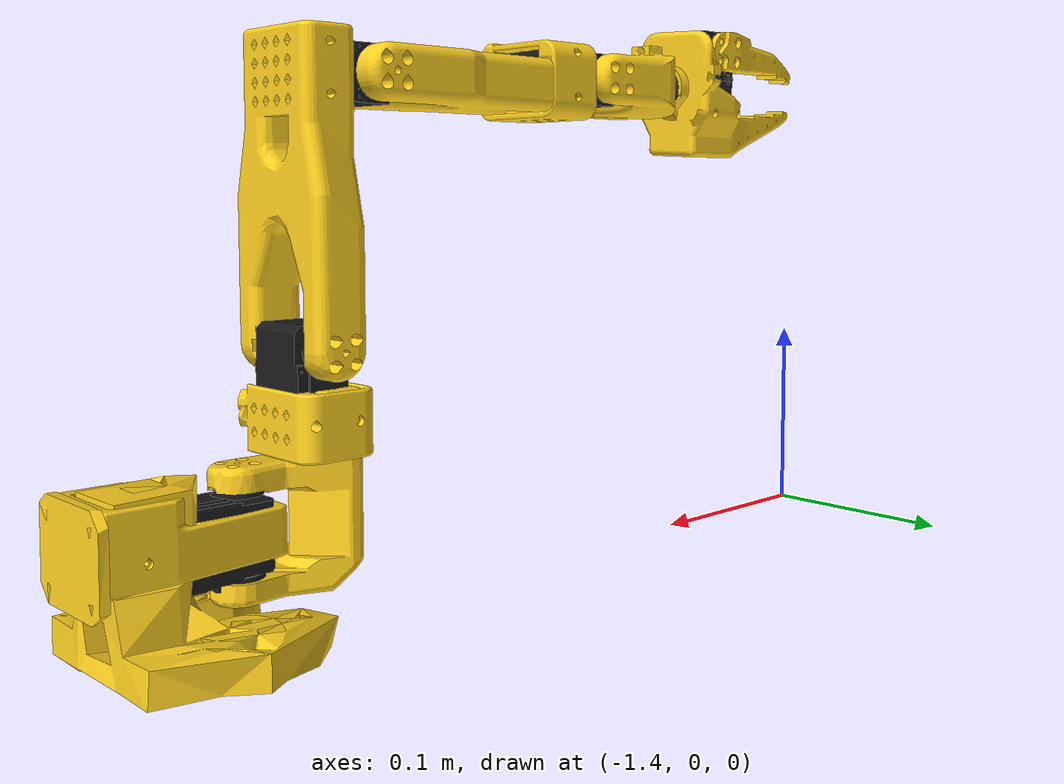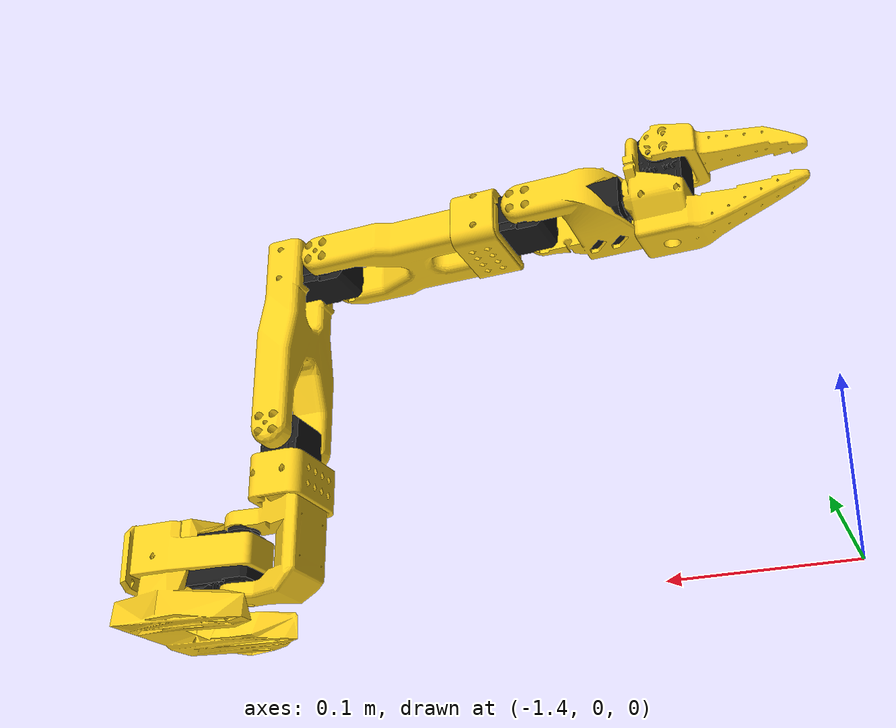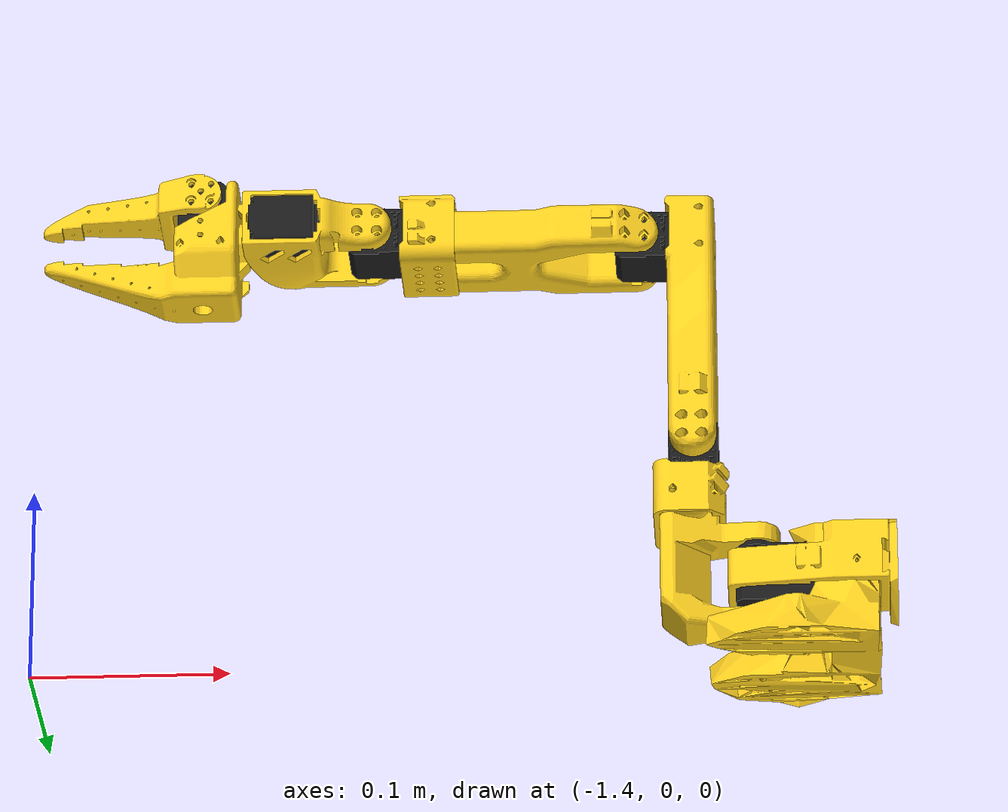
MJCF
<?xml version="1.0" ?>
<!-- Generated using onshape-to-robot -->
<!-- Onshape https://cad.onshape.com/documents/7715cc284bb430fe6dab4ffd/w/4fd0791b683777b02f8d975a/e/826c553ede3b7592eb9ca800 -->
<mujoco model="right_so101">
  <compiler angle="radian" meshdir="assets" autolimits="true"/>
  <default>
    <default class="right_so101">
      <joint damping="1" frictionloss="0.1" armature="0.005"/>
      <position kp="50"/>
      <default class="right_visual">
        <geom type="mesh" contype="0" conaffinity="0" group="2"/>
      </default>
      <default class="right_collision">
        <geom group="3"/>
      </default>
    </default>
  </default>
  <!-- Additional joints_properties.xml -->
  <default>
    <default class="right_sts3215">
      <geom contype="0" conaffinity="0"/>
      <joint damping="0.60" frictionloss="0.052" armature="0.028"/>
      <position kp="998.22" kv="2.731" forcerange="-2.94 2.94"/>
    </default>
    <default class="right_backlash">
      <!-- +/- 0.5° of backlash -->
      <joint damping="0.01" frictionloss="0" armature="0.01" limited="true" range="-0.008726646259971648 0.008726646259971648"/>
    </default>
  </default>
  <worldbody>
    <!-- Link base -->
    <body name="right_base" pos="-1.0 0 0" quat="0 0 0 1" childclass="right_so101">
      <inertial pos="0.0137179 -5.19711e-05 0.0334843" mass="0.147" fullinertia="0.000114686 0.000136117 0.000130364 -4.59787e-07 4.97151e-06 9.75275e-08"/>
      <!-- Part base_motor_holder_so101_v1 -->
      <geom type="mesh" class="right_visual" pos="-0.00636471 -9.94414e-05 -0.0024" quat="0.5 0.5 0.5 0.5" mesh="right_base_motor_holder_so101_v1" material="right_base_motor_holder_so101_v1_material"/>
      <!-- Part base_so101_v2 -->
      <geom type="mesh" class="right_visual" pos="-0.00636471 -8.97657e-09 -0.0024" quat="0.5 0.5 0.5 0.5" mesh="right_base_so101_v2" material="right_base_so101_v2_material"/>
      <!-- Part sts3215_03a_v1 -->
      <geom type="mesh" class="right_visual" pos="0.0263353 -8.97657e-09 0.0437" quat="1 -2.85511e-16 -9.64433e-17 6.12908e-16" mesh="right_sts3215_03a_v1" material="right_sts3215_03a_v1_material"/>
      <!-- Part waveshare_mounting_plate_so101_v2 -->
      <geom type="mesh" class="right_visual" pos="-0.0309827 -0.000199441 0.0474" quat="0.5 0.5 0.5 0.5" mesh="right_waveshare_mounting_plate_so101_v2" material="right_waveshare_mounting_plate_so101_v2_material"/>
      <!-- Frame baseframe -->
      <site group="3" name="right_baseframe" pos="8.67362e-19 9.55596e-18 3.46945e-18" quat="1 -8.17396e-19 3.78392e-17 2.22045e-16"/>
      <!-- Link shoulder -->
      <body name="right_shoulder" pos="0.0388353 -8.97657e-09 0.0624" quat="3.56167e-16 1.22818e-15 -1 -4.14635e-16">
        <!-- Joint from base to shoulder -->
        <joint axis="0 0 1" name="right_shoulder_pan" type="hinge" range="-1.9198621771937616 1.9198621771937634" class="right_sts3215"/>
        <inertial pos="-0.0307604 -1.66727e-05 -0.0252713" mass="0.100006" fullinertia="8.3759e-05 8.10403e-05 2.39783e-05 7.55525e-08 -1.16342e-06 1.54663e-07"/>
        <!-- Part sts3215_03a_v1_2 -->
        <geom type="mesh" class="right_visual" pos="-0.0303992 0.000422241 -0.0417" quat="0.5 0.5 0.5 -0.5" mesh="right_sts3215_03a_v1" material="right_sts3215_03a_v1_material"/>
        <geom type="mesh" class="right_collision" pos="-0.0303992 0.000422241 -0.0417" quat="0.5 0.5 0.5 -0.5" mesh="right_sts3215_03a_v1" material="right_sts3215_03a_v1_material"/>
        <!-- Part motor_holder_so101_base_v1 -->
        <geom type="mesh" class="right_visual" pos="-0.0675992 -0.000177759 0.0158499" quat="0.5 0.5 -0.5 0.5" mesh="right_motor_holder_so101_base_v1" material="right_motor_holder_so101_base_v1_material"/>
        <geom type="mesh" class="right_collision" pos="-0.0675992 -0.000177759 0.0158499" quat="0.5 0.5 -0.5 0.5" mesh="right_motor_holder_so101_base_v1" material="right_motor_holder_so101_base_v1_material"/>
        <!-- Part rotation_pitch_so101_v1 -->
        <geom type="mesh" class="right_visual" pos="0.0122008 2.22413e-05 0.0464" quat="0.707107 -0.707107 -0 8.3163e-34" mesh="right_rotation_pitch_so101_v1" material="right_rotation_pitch_so101_v1_material"/>
        <geom type="mesh" class="right_collision" pos="0.0122008 2.22413e-05 0.0464" quat="0.707107 -0.707107 -0 8.3163e-34" mesh="right_rotation_pitch_so101_v1" material="right_rotation_pitch_so101_v1_material"/>
        <!-- Link upper_arm -->
        <body name="right_upper_arm" pos="-0.0303992 -0.0182778 -0.0542" quat="0.5 -0.5 -0.5 -0.5">
          <!-- Joint from shoulder to upper_arm -->
          <joint axis="0 0 1" name="right_shoulder_lift" type="hinge" range="-1.7453292519943224 1.7453292519943366" class="right_sts3215"/>
          <inertial pos="-0.0898471 -0.00838224 0.0184089" mass="0.103" fullinertia="4.08002e-05 0.000147318 0.000142487 -1.97819e-05 -4.03016e-08 8.97326e-09"/>
          <!-- Part sts3215_03a_v1_3 -->
          <geom type="mesh" class="right_visual" pos="-0.11257 -0.0155 0.0187" quat="4.56308e-16 -0.707107 0.707107 -1.37383e-16" mesh="right_sts3215_03a_v1" material="right_sts3215_03a_v1_material"/>
          <geom type="mesh" class="right_collision" pos="-0.11257 -0.0155 0.0187" quat="4.56308e-16 -0.707107 0.707107 -1.37383e-16" mesh="right_sts3215_03a_v1" material="right_sts3215_03a_v1_material"/>
          <!-- Part upper_arm_so101_v1 -->
          <geom type="mesh" class="right_visual" pos="-0.065085 0.012 0.0182" quat="0 1 0 0" mesh="right_upper_arm_so101_v1" material="right_upper_arm_so101_v1_material"/>
          <geom type="mesh" class="right_collision" pos="-0.065085 0.012 0.0182" quat="0 1 0 0" mesh="right_upper_arm_so101_v1" material="right_upper_arm_so101_v1_material"/>
          <!-- Link lower_arm -->
          <body name="right_lower_arm" pos="-0.11257 -0.028 1.73763e-16" quat="0.707107 -5.98613e-17 -2.58051e-17 0.707107">
            <!-- Joint from upper_arm to lower_arm -->
            <!-- Note: 5-degree calibration offset applied to joint range -->
            <joint axis="0 0 1" name="right_elbow_flex" type="hinge" range="-1.69 1.69" class="right_sts3215"/>
            <inertial pos="-0.0980701 0.00324376 0.0182831" mass="0.104" fullinertia="2.87438e-05 0.000159844 0.00014529 7.41152e-06 1.26409e-06 -4.90188e-08"/>
            <!-- Part under_arm_so101_v1 -->
            <geom type="mesh" class="right_visual" pos="-0.0648499 -0.032 0.0182" quat="0 1 0 0" mesh="right_under_arm_so101_v1" material="right_under_arm_so101_v1_material"/>
            <geom type="mesh" class="right_collision" pos="-0.0648499 -0.032 0.0182" quat="0 1 0 0" mesh="right_under_arm_so101_v1" material="right_under_arm_so101_v1_material"/>
            <!-- Part motor_holder_so101_wrist_v1 -->
            <geom type="mesh" class="right_visual" pos="-0.0648499 -0.032 0.018" quat="3.92687e-16 -1 -1.9186e-15 -6.38378e-16" mesh="right_motor_holder_so101_wrist_v1" material="right_motor_holder_so101_wrist_v1_material"/>
            <geom type="mesh" class="right_collision" pos="-0.0648499 -0.032 0.018" quat="3.92687e-16 -1 -1.9186e-15 -6.38378e-16" mesh="right_motor_holder_so101_wrist_v1" material="right_motor_holder_so101_wrist_v1_material"/>
            <!-- Part sts3215_03a_v1_4 -->
            <geom type="mesh" class="right_visual" pos="-0.1224 0.0052 0.0187" quat="7.21645e-16 1.56949e-15 1 -3.33067e-16" mesh="right_sts3215_03a_v1" material="right_sts3215_03a_v1_material"/>
            <geom type="mesh" class="right_collision" pos="-0.1224 0.0052 0.0187" quat="7.21645e-16 1.56949e-15 1 -3.33067e-16" mesh="right_sts3215_03a_v1" material="right_sts3215_03a_v1_material"/>
            <!-- Link wrist -->
            <body name="right_wrist" pos="-0.1349 0.0052 3.62355e-17" quat="0.707107 9.58722e-16 -7.51313e-16 -0.707107">
              <!-- Joint from lower_arm to wrist -->
              <joint axis="0 0 1" name="right_wrist_flex" type="hinge" range="-1.6580628494556928 1.6580627293335335" class="right_sts3215"/>
              <inertial pos="-0.000103312 -0.0386143 0.0281156" mass="0.079" fullinertia="3.68263e-05 2.5391e-05 2.1e-05 1.7893e-08 -5.28128e-08 3.6412e-06"/>
              <!-- Part sts3215_03a_no_horn_v1 -->
              <geom type="mesh" class="right_visual" pos="8.32667e-17 -0.0424 0.0306" quat="0.5 0.5 0.5 -0.5" mesh="right_sts3215_03a_no_horn_v1" material="right_sts3215_03a_no_horn_v1_material"/>
              <geom type="mesh" class="right_collision" pos="8.32667e-17 -0.0424 0.0306" quat="0.5 0.5 0.5 -0.5" mesh="right_sts3215_03a_no_horn_v1" material="right_sts3215_03a_no_horn_v1_material"/>
              <!-- Part wrist_roll_pitch_so101_v2 -->
              <geom type="mesh" class="right_visual" pos="0 -0.028 0.0181" quat="0.5 -0.5 -0.5 -0.5" mesh="right_wrist_roll_pitch_so101_v2" material="right_wrist_roll_pitch_so101_v2_material"/>
              <geom type="mesh" class="right_collision" pos="0 -0.028 0.0181" quat="0.5 -0.5 -0.5 -0.5" mesh="right_wrist_roll_pitch_so101_v2" material="right_wrist_roll_pitch_so101_v2_material"/>
              <!-- Link gripper -->
              <body name="right_gripper" pos="5.55112e-17 -0.0611 0.0181" quat="0.0172091 -0.0172091 0.706897 0.706897">
                <!-- Joint from wrist to gripper -->
                <joint axis="0 0 1" name="right_wrist_roll" type="hinge" range="-2.7438472969992493 2.841206309382605" class="right_sts3215"/>
                <inertial pos="0.000213627 0.000245138 -0.025187" mass="0.087" fullinertia="2.75087e-05 4.33657e-05 3.45059e-05 -3.35241e-07 -5.7352e-06 -5.17847e-08"/>
                <!-- Part sts3215_03a_v1_5 -->
                <geom type="mesh" class="right_visual" pos="0.0077 0.0001 -0.0234" quat="0.707107 -0.707107 1.66015e-15 6.45094e-15" mesh="right_sts3215_03a_v1" material="right_sts3215_03a_v1_material"/>
                <geom type="mesh" class="right_collision" pos="0.0077 0.0001 -0.0234" quat="0.707107 -0.707107 1.66015e-15 6.45094e-15" mesh="right_sts3215_03a_v1" material="right_sts3215_03a_v1_material"/>
                <!-- Part wrist_roll_follower_so101_v1 -->
                <geom type="mesh" class="right_visual" pos="8.32667e-17 -0.000218214 0.000949706" quat="0 1 0 0" mesh="right_wrist_roll_follower_so101_v1" material="right_wrist_roll_follower_so101_v1_material"/>
                <geom type="mesh" class="right_collision" pos="8.32667e-17 -0.000218214 0.000949706" quat="0 1 0 0" mesh="right_wrist_roll_follower_so101_v1" material="right_wrist_roll_follower_so101_v1_material"/>
                <!-- Frame gripperframe -->
                <site group="3" name="right_gripperframe" pos="-0.0079 -0.000218121 -0.0981274" quat="0.707107 -0 0.707107 -2.37788e-17"/>
                <!-- Link moving_jaw_so101_v1 -->
                <body name="right_moving_jaw_so101_v1" pos="0.0202 0.0188 -0.0234" quat="0.707107 0.707107 -1.85362e-08 1.85362e-08">
                  <!-- Joint from gripper to moving_jaw_so101_v1 -->
                  <joint axis="0 0 1" name="right_gripper" type="hinge" range="-0.17453297762778586 1.7453291995659765" class="right_sts3215"/>
                  <inertial pos="-0.00157495 -0.0300244 0.0192755" mass="0.012" fullinertia="6.61427e-06 1.89032e-06 5.28738e-06 -3.19807e-07 -5.90717e-09 -1.09945e-07"/>
                  <!-- Part moving_jaw_so101_v1 -->
                  <geom type="mesh" class="right_visual" pos="-5.55112e-17 -5.55112e-17 0.0189" quat="1 -0 3.00524e-16 -2.00834e-17" mesh="right_moving_jaw_so101_v1" material="right_moving_jaw_so101_v1_material"/>
                  <geom type="mesh" class="right_collision" pos="-5.55112e-17 -5.55112e-17 0.0189" quat="1 -0 3.00524e-16 -2.00834e-17" mesh="right_moving_jaw_so101_v1" material="right_moving_jaw_so101_v1_material"/>
                </body>
              </body>
            </body>
          </body>
        </body>
      </body>
    </body>
  </worldbody>
  <asset>
    <mesh name = "right_waveshare_mounting_plate_so101_v2" file="waveshare_mounting_plate_so101_v2.stl"/>
    <mesh name = "right_sts3215_03a_v1" file="sts3215_03a_v1.stl"/>
    <mesh name="right_motor_holder_so101_base_v1" file="motor_holder_so101_base_v1.stl"/>
    <mesh name="right_wrist_roll_follower_so101_v1" file="wrist_roll_follower_so101_v1.stl"/>
    <mesh name="right_moving_jaw_so101_v1" file="moving_jaw_so101_v1.stl"/>
    <mesh name="right_base_motor_holder_so101_v1" file="base_motor_holder_so101_v1.stl"/>
    <mesh name="right_upper_arm_so101_v1" file="upper_arm_so101_v1.stl"/>
    <mesh name="right_wrist_roll_pitch_so101_v2" file="wrist_roll_pitch_so101_v2.stl"/>
    <mesh name="right_under_arm_so101_v1" file="under_arm_so101_v1.stl"/>
    <mesh name="right_rotation_pitch_so101_v1" file="rotation_pitch_so101_v1.stl"/>
    <mesh name="right_motor_holder_so101_wrist_v1" file="motor_holder_so101_wrist_v1.stl"/>
    <mesh name="right_sts3215_03a_no_horn_v1" file="sts3215_03a_no_horn_v1.stl"/>
    <mesh name="right_base_so101_v2" file="base_so101_v2.stl"/>
    <material name="right_base_motor_holder_so101_v1_material" rgba="1 0.82 0.12 1"/>
    <material name="right_base_so101_v2_material" rgba="1 0.82 0.12 1"/>
    <material name="right_sts3215_03a_v1_material" rgba="0.1 0.1 0.1 1"/>
    <material name="right_waveshare_mounting_plate_so101_v2_material" rgba="1 0.82 0.12 1"/>
    <material name="right_motor_holder_so101_base_v1_material" rgba="1 0.82 0.12 1"/>
    <material name="right_rotation_pitch_so101_v1_material" rgba="1 0.82 0.12 1"/>
    <material name="right_upper_arm_so101_v1_material" rgba="1 0.82 0.12 1"/>
    <material name="right_under_arm_so101_v1_material" rgba="1 0.82 0.12 1"/>
    <material name="right_motor_holder_so101_wrist_v1_material" rgba="1 0.82 0.12 1"/>
    <material name="right_sts3215_03a_no_horn_v1_material" rgba="0.1 0.1 0.1 1.0"/>
    <material name="right_wrist_roll_pitch_so101_v2_material" rgba="1 0.82 0.12 1"/>
    <material name="right_wrist_roll_follower_so101_v1_material" rgba="1 0.82 0.12 1"/>
    <material name="right_moving_jaw_so101_v1_material" rgba="1 0.82 0.12 1"/>
  </asset>
  <actuator>
    <position class="right_sts3215" name="right_shoulder_pan" joint="right_shoulder_pan" forcerange="-3.35 3.35" ctrlrange="-1.91986 1.91986"/>
    <position class="right_sts3215" name="right_shoulder_lift" joint="right_shoulder_lift" forcerange="-3.35 3.35" ctrlrange="-1.74533 1.74533"/>
    <position class="right_sts3215" name="right_elbow_flex" joint="right_elbow_flex" forcerange="-3.35 3.35" ctrlrange="-1.69 1.69"/>
    <position class="right_sts3215" name="right_wrist_flex" joint="right_wrist_flex" forcerange="-3.35 3.35" ctrlrange="-1.65806 1.65806"/>
    <position class="right_sts3215" name="right_wrist_roll" joint="right_wrist_roll" forcerange="-3.35 3.35" ctrlrange="-2.74385 2.84121"/>
    <position class="right_sts3215" name="right_gripper" joint="right_gripper" forcerange="-3.35 3.35" ctrlrange="-0.17453 1.74533"/>
  </actuator>
  <equality/>
</mujoco>
